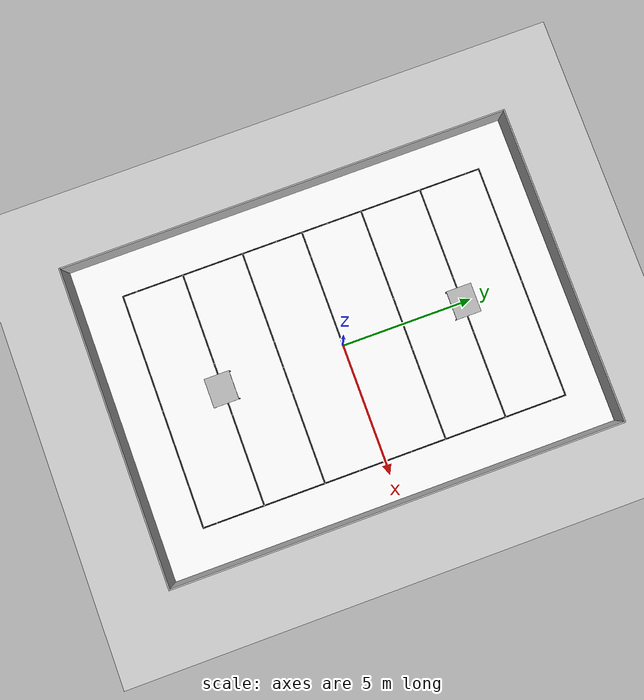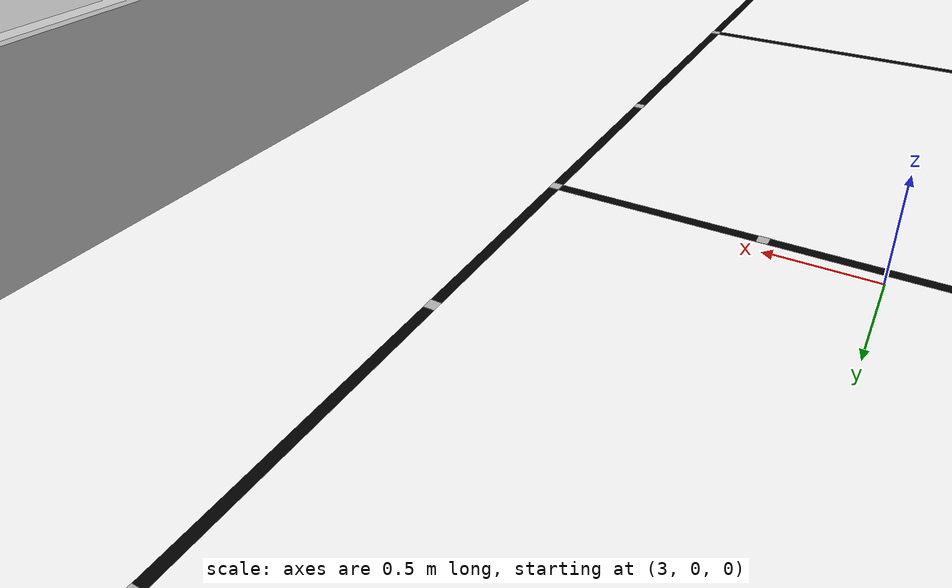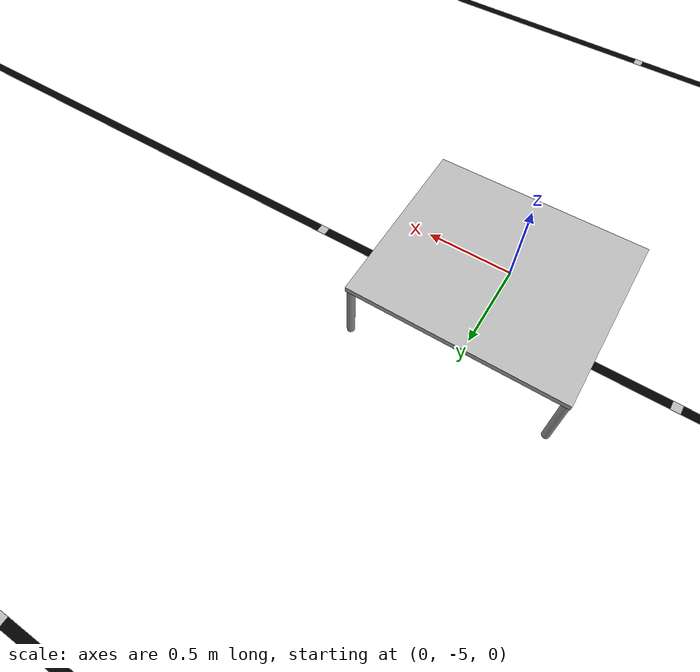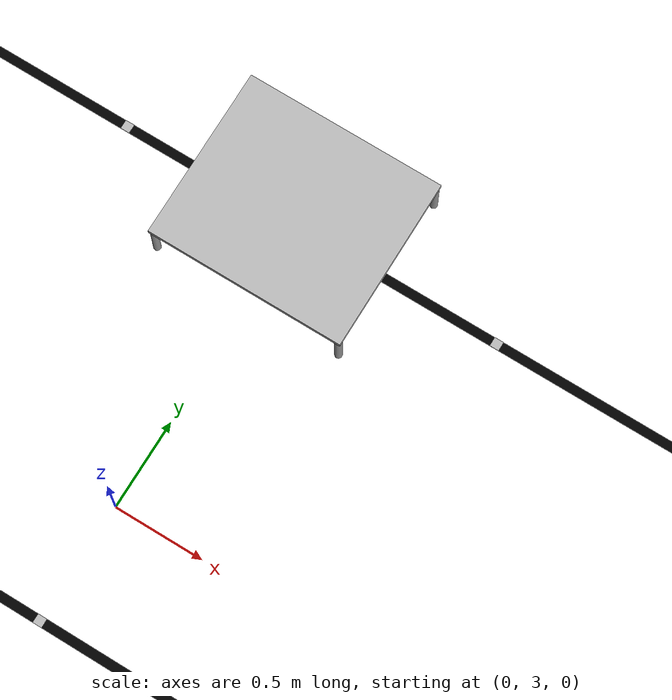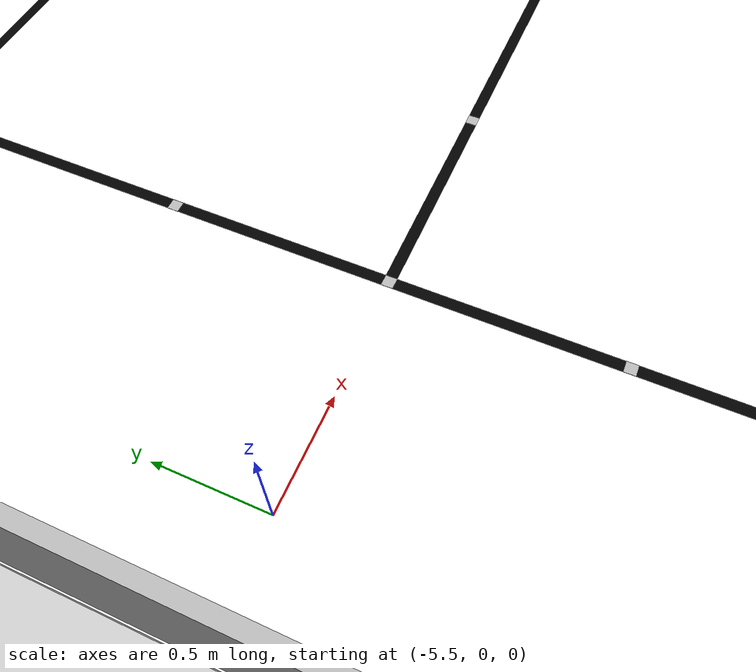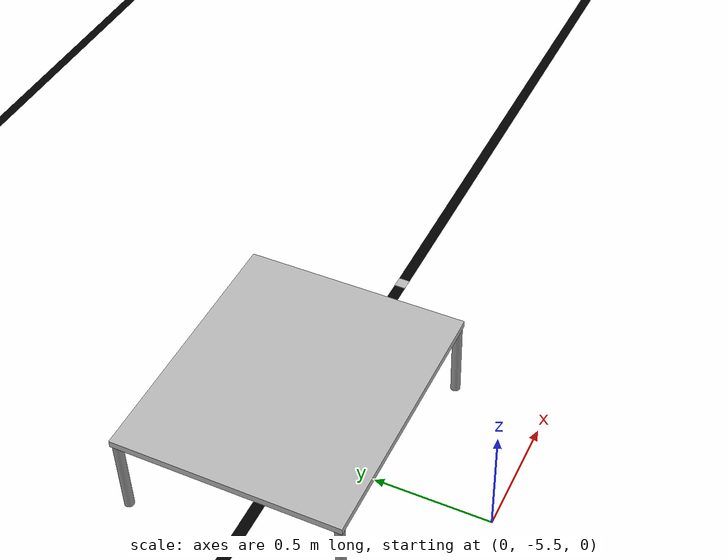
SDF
<sdf version="1.7">
 <world name="default">
  <light name="sun" type="directional">
   <pose>0 0 10 0 -0 0</pose>
   <diffuse>0.8 0.8 0.8 1</diffuse>
   <specular>0.2 0.2 0.2 1</specular>
   <attenuation>
    <range>1000</range>
    <constant>0.9</constant>
    <linear>0.01</linear>
    <quadratic>0.001</quadratic>
   </attenuation>
   <direction>-0.5 0.1 -0.9</direction>
   <spot><inner_angle>0</inner_angle><outer_angle>0</outer_angle><falloff>0</falloff></spot>
  </light>
  <model name="ground_plane">
   <static>1</static>
   <link name="link">
    <collision name="collision">
     <geometry><plane><normal>0 0 1</normal><size>100 100</size></plane></geometry>
    </collision>
    <visual name="visual">
     <geometry><plane><normal>0 0 1</normal><size>100 100</size></plane></geometry>
     <material>
      <script><name>Gazebo/Grey</name><uri>file://media/materials/scripts/gazebo.material</uri></script>
     </material>
    </visual>
   </link>
  </model>
  <model name="wooden_floor">
   <static>1</static>
   <pose>-0.018451 -0.120164 0.01 0 -0 0</pose>
   <link name="floor_link">
    <collision name="floor_collision"><geometry><box><size>12 17 0.1</size></box></geometry></collision>
    <visual name="floor_visual">
     <geometry><box><size>12 17 0.1</size></box></geometry>
     <material><ambient>1 1 1 1</ambient><diffuse>1 1 1 1</diffuse></material>
    </visual>
   </link>
  </model>
  <model name="black_line">
   <static>1</static>
   <pose>0 0 0.06 0 -0 0</pose>
   <link name="line_link">
    <visual name="line_visual">
     <geometry><box><size>9 0.05 0.0001</size></box></geometry>
     <material><ambient>0 0 0 1</ambient><diffuse>0 0 0 1</diffuse></material>
    </visual>
   </link>
  </model>
  <gravity>0 0 -9.8</gravity>
  <scene><ambient>0.4 0.4 0.4 1</ambient><background>0.7 0.7 0.7 1</background><shadows>1</shadows></scene>
  <magnetic_field>6e-06 2.3e-05 -4.2e-05</magnetic_field>
  <atmosphere type="adiabatic"/>
  <physics type="ode">
   <max_step_size>0.001</max_step_size>
   <real_time_factor>1</real_time_factor>
   <real_time_update_rate>1000</real_time_update_rate>
  </physics>
  <spherical_coordinates>
   <surface_model>EARTH_WGS84</surface_model>
   <latitude_deg>0</latitude_deg>
   <longitude_deg>0</longitude_deg>
   <elevation>0</elevation>
   <heading_deg>0</heading_deg>
  </spherical_coordinates>
  <model name="black_line_clone">
   <static>1</static>
   <pose>0 2.33333 0.06 0 -0 0</pose>
   <link name="line_link">
    <visual name="line_visual">
     <geometry><box><size>9 0.05 0.001</size></box></geometry>
     <material><ambient>0 0 0 1</ambient><diffuse>0 0 0 1</diffuse></material>
    </visual>
   </link>
  </model>
  <model name="black_line_clone_0">
   <static>1</static>
   <pose>0 4.666 0.06 0 -0 0</pose>
   <link name="line_link">
    <visual name="line_visual">
     <geometry><box><size>9 0.05 0.001</size></box></geometry>
     <material><ambient>0 0 0 1</ambient><diffuse>0 0 0 1</diffuse></material>
    </visual>
   </link>
  </model>
  <model name="black_line_clone_1">
   <static>1</static>
   <pose>0 7 0.06 0 -0 0</pose>
   <link name="line_link">
    <visual name="line_visual">
     <geometry><box><size>9 0.05 0.001</size></box></geometry>
     <material><ambient>0 0 0 1</ambient><diffuse>0 0 0 1</diffuse></material>
    </visual>
   </link>
  </model>
  <model name="black_line_clone_2">
   <static>1</static>
   <pose>0 -2.3333 0.06 0 -0 0</pose>
   <link name="line_link">
    <visual name="line_visual">
     <geometry><box><size>9 0.05 0.001</size></box></geometry>
     <material><ambient>0 0 0 1</ambient><diffuse>0 0 0 1</diffuse></material>
    </visual>
   </link>
  </model>
  <model name="black_line_clone_3">
   <static>1</static>
   <pose>0 -4.6666 0.06 0 -0 0</pose>
   <link name="line_link">
    <visual name="line_visual">
     <geometry><box><size>9 0.05 0.001</size></box></geometry>
     <material><ambient>0 0 0 1</ambient><diffuse>0 0 0 1</diffuse></material>
    </visual>
   </link>
  </model>
  <model name="black_line_clone_4">
   <static>1</static>
   <pose>0 -7 0.06 0 -0 0</pose>
   <link name="line_link">
    <visual name="line_visual">
     <geometry><box><size>9 0.05 0.001</size></box></geometry>
     <material><ambient>0 0 0 1</ambient><diffuse>0 0 0 1</diffuse></material>
    </visual>
   </link>
  </model>
  <model name="black_line_clone_5">
   <static>1</static>
   <pose>4.475 0 0.06 0 -0 0</pose>
   <link name="line_link">
    <visual name="line_visual">
     <geometry><box><size>0.05 14 0.001</size></box></geometry>
     <material><ambient>0 0 0 1</ambient><diffuse>0 0 0 1</diffuse></material>
    </visual>
   </link>
  </model>
  <model name="black_line_clone_5_clone">
   <static>1</static>
   <pose>-4.475 0 0.06 0 -0 0</pose>
   <link name="line_link">
    <visual name="line_visual">
     <geometry><box><size>0.05 14 0.001</size></box></geometry>
     <material><ambient>0 0 0 1</ambient><diffuse>0 0 0 1</diffuse></material>
    </visual>
   </link>
  </model>
  <model name="cube_test_clone">
   <link name="link_0">
    <inertial>
     <mass>1</mass>
     <inertia>
      <ixx>0.166667</ixx>
      <ixy>0</ixy>
      <ixz>0</ixz>
      <iyy>0.166667</iyy>
      <iyz>0</iyz>
      <izz>0.166667</izz>
     </inertia>
    </inertial>
    <visual name="visual">
     <geometry><box><size>0.05 16.9 1</size></box></geometry>
     <material>
      <lighting>1</lighting>
      <script>
       <uri>model://cube_test/materials/scripts</uri>
       <uri>model://cube_test/materials/textures</uri>
       <name>teknofest_logo</name>
      </script>
      <shader type="pixel"/>
     </material>
    </visual>
    <collision name="collision">
     <geometry><box><size>0.05 16.9 1</size></box></geometry>
     <surface>
      <friction>
       <ode><mu>1</mu><mu2>1</mu2><fdir1>0 0 0</fdir1><slip1>0</slip1><slip2>0</slip2></ode>
       <torsional>
        <coefficient>1</coefficient>
        <patch_radius>0</patch_radius>
        <surface_radius>0</surface_radius>
        <use_patch_radius>1</use_patch_radius>
        <ode><slip>0</slip></ode>
       </torsional>
      </friction>
      <bounce><restitution_coefficient>0</restitution_coefficient><threshold>1e+06</threshold></bounce>
      <contact>
       <collide_without_contact>0</collide_without_contact>
       <collide_without_contact_bitmask>1</collide_without_contact_bitmask>
       <collide_bitmask>1</collide_bitmask>
       <ode>
        <soft_cfm>0</soft_cfm>
        <soft_erp>0.2</soft_erp>
        <kp>1e+13</kp>
        <kd>1</kd>
        <max_vel>0.01</max_vel>
        <min_depth>0</min_depth>
       </ode>
       <bullet>
        <split_impulse>1</split_impulse>
        <split_impulse_penetration_threshold>-0.01</split_impulse_penetration_threshold>
        <soft_cfm>0</soft_cfm>
        <soft_erp>0.2</soft_erp>
        <kp>1e+13</kp>
        <kd>1</kd>
       </bullet>
      </contact>
     </surface>
    </collision>
   </link>
   <static>1</static>
   <pose>5.96296 -0.112884 0.46 0 -0 0</pose>
  </model>
  <model name="cube_test_clone_clone">
   <link name="link_0">
    <inertial>
     <mass>1</mass>
     <inertia>
      <ixx>0.166667</ixx>
      <ixy>0</ixy>
      <ixz>0</ixz>
      <iyy>0.166667</iyy>
      <iyz>0</iyz>
      <izz>0.166667</izz>
     </inertia>
    </inertial>
    <visual name="visual">
     <geometry><box><size>0.05 16.9 1</size></box></geometry>
     <material>
      <lighting>1</lighting>
      <script>
       <uri>model://cube_test/materials/scripts</uri>
       <uri>model://cube_test/materials/textures</uri>
       <name>teknofest_logo</name>
      </script>
      <shader type="pixel"/>
     </material>
    </visual>
    <collision name="collision">
     <geometry><box><size>0.05 16.9 1</size></box></geometry>
     <surface>
      <friction>
       <ode><mu>1</mu><mu2>1</mu2><fdir1>0 0 0</fdir1><slip1>0</slip1><slip2>0</slip2></ode>
       <torsional>
        <coefficient>1</coefficient>
        <patch_radius>0</patch_radius>
        <surface_radius>0</surface_radius>
        <use_patch_radius>1</use_patch_radius>
        <ode><slip>0</slip></ode>
       </torsional>
      </friction>
      <bounce><restitution_coefficient>0</restitution_coefficient><threshold>1e+06</threshold></bounce>
      <contact>
       <collide_without_contact>0</collide_without_contact>
       <collide_without_contact_bitmask>1</collide_without_contact_bitmask>
       <collide_bitmask>1</collide_bitmask>
       <ode>
        <soft_cfm>0</soft_cfm>
        <soft_erp>0.2</soft_erp>
        <kp>1e+13</kp>
        <kd>1</kd>
        <max_vel>0.01</max_vel>
        <min_depth>0</min_depth>
       </ode>
       <bullet>
        <split_impulse>1</split_impulse>
        <split_impulse_penetration_threshold>-0.01</split_impulse_penetration_threshold>
        <soft_cfm>0</soft_cfm>
        <soft_erp>0.2</soft_erp>
        <kp>1e+13</kp>
        <kd>1</kd>
       </bullet>
      </contact>
     </surface>
    </collision>
   </link>
   <static>1</static>
   <pose>-5.98703 -0.112884 0.46 0 -0 0</pose>
  </model>
  <model name="cube_test_clone_clone_0">
   <link name="link_0">
    <inertial>
     <mass>1</mass>
     <inertia>
      <ixx>0.166667</ixx>
      <ixy>0</ixy>
      <ixz>0</ixz>
      <iyy>0.166667</iyy>
      <iyz>0</iyz>
      <izz>0.166667</izz>
     </inertia>
    </inertial>
    <visual name="visual">
     <geometry><box><size>0.05 12 1</size></box></geometry>
     <material>
      <lighting>1</lighting>
      <script>
       <uri>model://cube_test/materials/scripts</uri>
       <uri>model://cube_test/materials/textures</uri>
       <name>teknofest_logo</name>
      </script>
      <shader type="pixel"/>
     </material>
    </visual>
    <collision name="collision">
     <geometry><box><size>0.05 12 1</size></box></geometry>
     <surface>
      <friction>
       <ode><mu>1</mu><mu2>1</mu2><fdir1>0 0 0</fdir1><slip1>0</slip1><slip2>0</slip2></ode>
       <torsional>
        <coefficient>1</coefficient>
        <patch_radius>0</patch_radius>
        <surface_radius>0</surface_radius>
        <use_patch_radius>1</use_patch_radius>
        <ode><slip>0</slip></ode>
       </torsional>
      </friction>
      <bounce><restitution_coefficient>0</restitution_coefficient><threshold>1e+06</threshold></bounce>
      <contact>
       <collide_without_contact>0</collide_without_contact>
       <collide_without_contact_bitmask>1</collide_without_contact_bitmask>
       <collide_bitmask>1</collide_bitmask>
       <ode>
        <soft_cfm>0</soft_cfm>
        <soft_erp>0.2</soft_erp>
        <kp>1e+13</kp>
        <kd>1</kd>
        <max_vel>0.01</max_vel>
        <min_depth>0</min_depth>
       </ode>
       <bullet>
        <split_impulse>1</split_impulse>
        <split_impulse_penetration_threshold>-0.01</split_impulse_penetration_threshold>
        <soft_cfm>0</soft_cfm>
        <soft_erp>0.2</soft_erp>
        <kp>1e+13</kp>
        <kd>1</kd>
       </bullet>
      </contact>
     </surface>
    </collision>
   </link>
   <static>1</static>
   <pose>-0.012035 -8.58616 0.46 0 -0 1.571</pose>
  </model>
  <model name="cube_test_clone_clone_0_clone">
   <link name="link_0">
    <inertial>
     <mass>1</mass>
     <inertia>
      <ixx>0.166667</ixx>
      <ixy>0</ixy>
      <ixz>0</ixz>
      <iyy>0.166667</iyy>
      <iyz>0</iyz>
      <izz>0.166667</izz>
     </inertia>
    </inertial>
    <visual name="visual">
     <geometry><box><size>0.05 12 1</size></box></geometry>
     <material>
      <lighting>1</lighting>
      <script>
       <uri>model://cube_test/materials/scripts</uri>
       <uri>model://cube_test/materials/textures</uri>
       <name>teknofest_logo</name>
      </script>
      <shader type="pixel"/>
     </material>
    </visual>
    <collision name="collision">
     <geometry><box><size>0.05 12 1</size></box></geometry>
     <surface>
      <friction>
       <ode><mu>1</mu><mu2>1</mu2><fdir1>0 0 0</fdir1><slip1>0</slip1><slip2>0</slip2></ode>
       <torsional>
        <coefficient>1</coefficient>
        <patch_radius>0</patch_radius>
        <surface_radius>0</surface_radius>
        <use_patch_radius>1</use_patch_radius>
        <ode><slip>0</slip></ode>
       </torsional>
      </friction>
      <bounce><restitution_coefficient>0</restitution_coefficient><threshold>1e+06</threshold></bounce>
      <contact>
       <collide_without_contact>0</collide_without_contact>
       <collide_without_contact_bitmask>1</collide_without_contact_bitmask>
       <collide_bitmask>1</collide_bitmask>
       <ode>
        <soft_cfm>0</soft_cfm>
        <soft_erp>0.2</soft_erp>
        <kp>1e+13</kp>
        <kd>1</kd>
        <max_vel>0.01</max_vel>
        <min_depth>0</min_depth>
       </ode>
       <bullet>
        <split_impulse>1</split_impulse>
        <split_impulse_penetration_threshold>-0.01</split_impulse_penetration_threshold>
        <soft_cfm>0</soft_cfm>
        <soft_erp>0.2</soft_erp>
        <kp>1e+13</kp>
        <kd>1</kd>
       </bullet>
      </contact>
     </surface>
    </collision>
   </link>
   <static>1</static>
   <pose>-0.012035 8.3604 0.46 0 -0 1.571</pose>
  </model>
  <light name="user_point_light_0" type="point">
   <pose>-0.089094 -0.040019 1 0 -0 0</pose>
   <diffuse>0.5 0.5 0.5 1</diffuse>
   <specular>0.1 0.1 0.1 1</specular>
   <attenuation>
    <range>20</range>
    <constant>0.5</constant>
    <linear>0.01</linear>
    <quadratic>0.001</quadratic>
   </attenuation>
   <cast_shadows>0</cast_shadows>
   <direction>0 0 -1</direction>
   <spot><inner_angle>0</inner_angle><outer_angle>0</outer_angle><falloff>0</falloff></spot>
  </light>
  <light name="user_point_light_1" type="point">
   <pose>-0.011297 -3.43767 1 0 -0 0</pose>
   <diffuse>0.5 0.5 0.5 1</diffuse>
   <specular>0.1 0.1 0.1 1</specular>
   <attenuation>
    <range>20</range>
    <constant>0.5</constant>
    <linear>0.01</linear>
    <quadratic>0.001</quadratic>
   </attenuation>
   <cast_shadows>0</cast_shadows>
   <direction>0 0 -1</direction>
   <spot><inner_angle>0</inner_angle><outer_angle>0</outer_angle><falloff>0</falloff></spot>
  </light>
  <light name="user_point_light_2" type="point">
   <pose>0.155011 3.54169 1 0 -0 0</pose>
   <diffuse>0.5 0.5 0.5 1</diffuse>
   <specular>0.1 0.1 0.1 1</specular>
   <attenuation>
    <range>20</range>
    <constant>0.5</constant>
    <linear>0.01</linear>
    <quadratic>0.001</quadratic>
   </attenuation>
   <cast_shadows>0</cast_shadows>
   <direction>0 0 -1</direction>
   <spot><inner_angle>0</inner_angle><outer_angle>0</outer_angle><falloff>0</falloff></spot>
  </light>
  <model name="qr_code">
   <pose>3.5 0 0.061 0 -0 0</pose>
   <link name="link_0">
    <visual name="visual">
     <geometry><box><size>0.05 0.05 0.001</size></box></geometry>
     <material>
      <lighting>1</lighting>
      <script>
       <uri>model://qr_code/materials/scripts</uri>
       <uri>model://qr_code/materials/textures</uri>
       <name>station_1_up</name>
      </script>
      <shader type="pixel"/>
     </material>
    </visual>
   </link>
   <static>1</static>
  </model>
  <model name="qr_code_station_1_right">
   <pose>4.475 1 0.061 0 -0 0</pose>
   <link name="link_0">
    <visual name="visual">
     <geometry><box><size>0.05 0.05 0.001</size></box></geometry>
     <material>
      <lighting>1</lighting>
      <script>
       <uri>model://qr_code/materials/scripts</uri>
       <uri>model://qr_code/materials/textures</uri>
       <name>station_1_right</name>
      </script>
      <shader type="pixel"/>
     </material>
    </visual>
   </link>
   <static>1</static>
  </model>
  <model name="qr_code_station_1_left">
   <pose>4.475 -1 0.061 0 -0 0</pose>
   <link name="link_0">
    <visual name="visual">
     <geometry><box><size>0.05 0.05 0.001</size></box></geometry>
     <material>
      <lighting>1</lighting>
      <script>
       <uri>model://qr_code/materials/scripts</uri>
       <uri>model://qr_code/materials/textures</uri>
       <name>station_1_left</name>
      </script>
      <shader type="pixel"/>
     </material>
    </visual>
   </link>
   <static>1</static>
  </model>
  <model name="qr_code_station_1_center">
   <pose>4.475 0 0.061 0 -0 0</pose>
   <link name="link_0">
    <visual name="visual">
     <geometry><box><size>0.05 0.05 0.001</size></box></geometry>
     <material>
      <lighting>1</lighting>
      <script>
       <uri>model://qr_code/materials/scripts</uri>
       <uri>model://qr_code/materials/textures</uri>
       <name>station_1_center</name>
      </script>
      <shader type="pixel"/>
     </material>
    </visual>
   </link>
   <static>1</static>
  </model>
  <model name="qr_code_center">
   <pose>0 0 0.061 0 -0 0</pose>
   <link name="link_0">
    <visual name="visual">
     <geometry><box><size>0.05 0.05 0.001</size></box></geometry>
     <material>
      <lighting>1</lighting>
      <script>
       <uri>model://qr_code/materials/scripts</uri>
       <uri>model://qr_code/materials/textures</uri>
       <name>center</name>
      </script>
      <shader type="pixel"/>
     </material>
    </visual>
   </link>
   <static>1</static>
  </model>
  <model name="qr_code_station_2_center">
   <pose>-4.475 0 0.061 0 -0 0</pose>
   <link name="link_0">
    <visual name="visual">
     <geometry><box><size>0.05 0.05 0.001</size></box></geometry>
     <material>
      <lighting>1</lighting>
      <script>
       <uri>model://qr_code/materials/scripts</uri>
       <uri>model://qr_code/materials/textures</uri>
       <name>station_2_center</name>
      </script>
      <shader type="pixel"/>
     </material>
    </visual>
   </link>
   <static>1</static>
  </model>
  <model name="qr_code_station_2_left">
   <pose>-4.475 -1 0.061 0 -0 0</pose>
   <link name="link_0">
    <visual name="visual">
     <geometry><box><size>0.05 0.05 0.001</size></box></geometry>
     <material>
      <lighting>1</lighting>
      <script>
       <uri>model://qr_code/materials/scripts</uri>
       <uri>model://qr_code/materials/textures</uri>
       <name>station_2_left</name>
      </script>
      <shader type="pixel"/>
     </material>
    </visual>
   </link>
   <static>1</static>
  </model>
  <model name="qr_code_station_2_right">
   <pose>-4.476 1 0.061 0 -0 0</pose>
   <link name="link_0">
    <visual name="visual">
     <geometry><box><size>0.05 0.05 0.001</size></box></geometry>
     <material>
      <lighting>1</lighting>
      <script>
       <uri>model://qr_code/materials/scripts</uri>
       <uri>model://qr_code/materials/textures</uri>
       <name>station_2_right</name>
      </script>
      <shader type="pixel"/>
     </material>
    </visual>
   </link>
   <static>1</static>
  </model>
  <model name="qr_code_station_2_up">
   <pose>-3.5 0 0.061 0 -0 0</pose>
   <link name="link_0">
    <visual name="visual">
     <geometry><box><size>0.05 0.05 0.001</size></box></geometry>
     <material>
      <lighting>1</lighting>
      <script>
       <uri>model://qr_code/materials/scripts</uri>
       <uri>model://qr_code/materials/textures</uri>
       <name>station_2_up</name>
      </script>
      <shader type="pixel"/>
     </material>
    </visual>
   </link>
   <static>1</static>
  </model>
  <model name="qr_code_zone_a_center">
   <pose>0 4.66666 0.061 0 -0 0</pose>
   <link name="link_0">
    <visual name="visual">
     <geometry><box><size>0.05 0.05 0.001</size></box></geometry>
     <material>
      <lighting>1</lighting>
      <script>
       <uri>model://qr_code/materials/scripts</uri>
       <uri>model://qr_code/materials/textures</uri>
       <name>zone_a_center</name>
      </script>
      <shader type="pixel"/>
     </material>
    </visual>
   </link>
   <static>1</static>
  </model>
  <model name="qr_code_zone_a_down">
   <pose>1.16746 4.66688 0.061 0 -0 0</pose>
   <link name="link_0">
    <visual name="visual">
     <geometry><box><size>0.05 0.05 0.001</size></box></geometry>
     <material>
      <lighting>1</lighting>
      <script>
       <uri>model://qr_code/materials/scripts</uri>
       <uri>model://qr_code/materials/textures</uri>
       <name>zone_a_down</name>
      </script>
      <shader type="pixel"/>
     </material>
    </visual>
   </link>
   <static>1</static>
  </model>
  <model name="qr_code_zone_a_up">
   <pose>-1 4.66667 0.061 0 -0 0</pose>
   <link name="link_0">
    <visual name="visual">
     <geometry><box><size>0.05 0.05 0.001</size></box></geometry>
     <material>
      <lighting>1</lighting>
      <script>
       <uri>model://qr_code/materials/scripts</uri>
       <uri>model://qr_code/materials/textures</uri>
       <name>zone_a_up</name>
      </script>
      <shader type="pixel"/>
     </material>
    </visual>
   </link>
   <static>1</static>
  </model>
  <model name="qr_code_zone_b_center">
   <pose>0 2.33333 0.0615 0 -0 0</pose>
   <link name="link_0">
    <visual name="visual">
     <geometry><box><size>0.05 0.05 0.001</size></box></geometry>
     <material>
      <lighting>1</lighting>
      <script>
       <uri>model://qr_code/materials/scripts</uri>
       <uri>model://qr_code/materials/textures</uri>
       <name>zone_b_center</name>
      </script>
      <shader type="pixel"/>
     </material>
    </visual>
   </link>
   <static>1</static>
  </model>
  <model name="qr_code_zone_b_down">
   <pose>1 2.33333 0.0615 0 -0 0</pose>
   <link name="link_0">
    <visual name="visual">
     <geometry><box><size>0.05 0.05 0.001</size></box></geometry>
     <material>
      <lighting>1</lighting>
      <script>
       <uri>model://qr_code/materials/scripts</uri>
       <uri>model://qr_code/materials/textures</uri>
       <name>zone_b_down</name>
      </script>
      <shader type="pixel"/>
     </material>
    </visual>
   </link>
   <static>1</static>
  </model>
  <model name="qr_code_zone_b_up">
   <pose>-1 2.33333 0.0615 0 -0 0</pose>
   <link name="link_0">
    <visual name="visual">
     <geometry><box><size>0.05 0.05 0.001</size></box></geometry>
     <material>
      <lighting>1</lighting>
      <script>
       <uri>model://qr_code/materials/scripts</uri>
       <uri>model://qr_code/materials/textures</uri>
       <name>zone_b_up</name>
      </script>
      <shader type="pixel"/>
     </material>
    </visual>
   </link>
   <static>1</static>
  </model>
  <model name="qr_code_zone_c_center">
   <pose>0 -2.33333 0.061 0 -0 0</pose>
   <link name="link_0">
    <visual name="visual">
     <geometry><box><size>0.05 0.05 0.001</size></box></geometry>
     <material>
      <lighting>1</lighting>
      <script>
       <uri>model://qr_code/materials/scripts</uri>
       <uri>model://qr_code/materials/textures</uri>
       <name>zone_c_center</name>
      </script>
      <shader type="pixel"/>
     </material>
    </visual>
   </link>
   <static>1</static>
  </model>
  <model name="qr_code_zone_c_down">
   <pose>1 -2.33333 0.061 0 -0 0</pose>
   <link name="link_0">
    <visual name="visual">
     <geometry><box><size>0.05 0.05 0.001</size></box></geometry>
     <material>
      <lighting>1</lighting>
      <script>
       <uri>model://qr_code/materials/scripts</uri>
       <uri>model://qr_code/materials/textures</uri>
       <name>zone_c_down</name>
      </script>
      <shader type="pixel"/>
     </material>
    </visual>
   </link>
   <static>1</static>
  </model>
  <model name="qr_code_zone_c_up">
   <pose>-1 -2.33333 0.061 0 -0 0</pose>
   <link name="link_0">
    <visual name="visual">
     <geometry><box><size>0.05 0.05 0.001</size></box></geometry>
     <material>
      <lighting>1</lighting>
      <script>
       <uri>model://qr_code/materials/scripts</uri>
       <uri>model://qr_code/materials/textures</uri>
       <name>zone_c_up</name>
      </script>
      <shader type="pixel"/>
     </material>
    </visual>
   </link>
   <static>1</static>
  </model>
  <model name="qr_code_zone_d_center">
   <pose>0.077847 -4.6681 0.061 0 -0 0</pose>
   <link name="link_0">
    <visual name="visual">
     <geometry><box><size>0.05 0.05 0.001</size></box></geometry>
     <material>
      <lighting>1</lighting>
      <script>
       <uri>model://qr_code/materials/scripts</uri>
       <uri>model://qr_code/materials/textures</uri>
       <name>zone_d_center</name>
      </script>
      <shader type="pixel"/>
     </material>
    </visual>
   </link>
   <static>1</static>
  </model>
  <model name="qr_code_zone_d_down">
   <pose>1 -4.66667 0.061 0 -0 0</pose>
   <link name="link_0">
    <visual name="visual">
     <geometry><box><size>0.05 0.05 0.001</size></box></geometry>
     <material>
      <lighting>1</lighting>
      <script>
       <uri>model://qr_code/materials/scripts</uri>
       <uri>model://qr_code/materials/textures</uri>
       <name>zone_d_down</name>
      </script>
      <shader type="pixel"/>
     </material>
    </visual>
   </link>
   <static>1</static>
  </model>
  <model name="qr_code_zone_d_up">
   <pose>-1 -4.66666 0.061 0 -0 0</pose>
   <link name="link_0">
    <visual name="visual">
     <geometry><box><size>0.05 0.05 0.001</size></box></geometry>
     <material>
      <lighting>1</lighting>
      <script>
       <uri>model://qr_code/materials/scripts</uri>
       <uri>model://qr_code/materials/textures</uri>
       <name>zone_d_up</name>
      </script>
      <shader type="pixel"/>
     </material>
    </visual>
   </link>
   <static>1</static>
  </model>
  <model name="qr_code_intersection_zone_b_station_1">
   <pose>4.475 2.333 0.061 0 -0 0</pose>
   <link name="link_0">
    <visual name="visual">
     <geometry><box><size>0.05 0.05 0.001</size></box></geometry>
     <material>
      <lighting>1</lighting>
      <script>
       <uri>model://qr_code/materials/scripts</uri>
       <uri>model://qr_code/materials/textures</uri>
       <name>intersection_zone_b_station_1</name>
      </script>
      <shader type="pixel"/>
     </material>
    </visual>
   </link>
   <static>1</static>
  </model>
  <model name="qr_code_intersection_zone_a_station_1">
   <pose>4.475 4.666 0.061 0 -0 0</pose>
   <link name="link_0">
    <visual name="visual">
     <geometry><box><size>0.05 0.05 0.001</size></box></geometry>
     <material>
      <lighting>1</lighting>
      <script>
       <uri>model://qr_code/materials/scripts</uri>
       <uri>model://qr_code/materials/textures</uri>
       <name>intersection_zone_a_station_1</name>
      </script>
      <shader type="pixel"/>
     </material>
    </visual>
   </link>
   <static>1</static>
  </model>
  <model name="qr_code_intersection_zone_x_station_1">
   <pose>4.475 6.475 0.061 0 -0 0</pose>
   <link name="link_0">
    <visual name="visual">
     <geometry><box><size>0.05 0.05 0.001</size></box></geometry>
     <material>
      <lighting>1</lighting>
      <script>
       <uri>model://qr_code/materials/scripts</uri>
       <uri>model://qr_code/materials/textures</uri>
       <name>intersection_zone_x_station_1</name>
      </script>
      <shader type="pixel"/>
     </material>
    </visual>
   </link>
   <static>1</static>
  </model>
  <model name="qr_code_zone_x_center">
   <pose>0 6.9999 0.061 0 -0 0</pose>
   <link name="link_0">
    <visual name="visual">
     <geometry><box><size>0.05 0.05 0.001</size></box></geometry>
     <material>
      <lighting>1</lighting>
      <script>
       <uri>model://qr_code/materials/scripts</uri>
       <uri>model://qr_code/materials/textures</uri>
       <name>zone_x_center</name>
      </script>
      <shader type="pixel"/>
     </material>
    </visual>
   </link>
   <static>1</static>
  </model>
  <model name="qr_code_intersection_zone_x_station_2">
   <pose>-4.475 6.475 0.061 0 -0 0</pose>
   <link name="link_0">
    <visual name="visual">
     <geometry><box><size>0.05 0.05 0.001</size></box></geometry>
     <material>
      <lighting>1</lighting>
      <script>
       <uri>model://qr_code/materials/scripts</uri>
       <uri>model://qr_code/materials/textures</uri>
       <name>intersection_zone_x_station_2</name>
      </script>
      <shader type="pixel"/>
     </material>
    </visual>
   </link>
   <static>1</static>
  </model>
  <model name="qr_code_intersection_zone_a_station_2">
   <pose>-4.475 4.666 0.061 0 -0 0</pose>
   <link name="link_0">
    <visual name="visual">
     <geometry><box><size>0.05 0.05 0.001</size></box></geometry>
     <material>
      <lighting>1</lighting>
      <script>
       <uri>model://qr_code/materials/scripts</uri>
       <uri>model://qr_code/materials/textures</uri>
       <name>intersection_zone_a_station_2</name>
      </script>
      <shader type="pixel"/>
     </material>
    </visual>
   </link>
   <static>1</static>
  </model>
  <model name="qr_code_intersection_zone_b_station_2">
   <pose>-4.475 2.333 0.061 0 -0 0</pose>
   <link name="link_0">
    <visual name="visual">
     <geometry><box><size>0.05 0.05 0.001</size></box></geometry>
     <material>
      <lighting>1</lighting>
      <script>
       <uri>model://qr_code/materials/scripts</uri>
       <uri>model://qr_code/materials/textures</uri>
       <name>intersection_zone_b_station_2</name>
      </script>
      <shader type="pixel"/>
     </material>
    </visual>
   </link>
   <static>1</static>
  </model>
  <model name="qr_code_intersection_zone_c_station_2">
   <pose>-4.475 -2.333 0.061 0 -0 0</pose>
   <link name="link_0">
    <visual name="visual">
     <geometry><box><size>0.05 0.05 0.001</size></box></geometry>
     <material>
      <lighting>1</lighting>
      <script>
       <uri>model://qr_code/materials/scripts</uri>
       <uri>model://qr_code/materials/textures</uri>
       <name>intersection_zone_c_station_2</name>
      </script>
      <shader type="pixel"/>
     </material>
    </visual>
   </link>
   <static>1</static>
  </model>
  <model name="qr_code_intersection_zone_d_station_2">
   <pose>-4.475 -4.666 0.061 0 -0 0</pose>
   <link name="link_0">
    <visual name="visual">
     <geometry><box><size>0.05 0.05 0.001</size></box></geometry>
     <material>
      <lighting>1</lighting>
      <script>
       <uri>model://qr_code/materials/scripts</uri>
       <uri>model://qr_code/materials/textures</uri>
       <name>intersection_zone_d_station_2</name>
      </script>
      <shader type="pixel"/>
     </material>
    </visual>
   </link>
   <static>1</static>
  </model>
  <model name="qr_code_intersection_zone_y_station_2">
   <pose>-4.47547 -6.475 0.061 0 -0 0</pose>
   <link name="link_0">
    <visual name="visual">
     <geometry><box><size>0.05 0.05 0.001</size></box></geometry>
     <material>
      <lighting>1</lighting>
      <script>
       <uri>model://qr_code/materials/scripts</uri>
       <uri>model://qr_code/materials/textures</uri>
       <name>intersection_zone_y_station_2</name>
      </script>
      <shader type="pixel"/>
     </material>
    </visual>
   </link>
   <static>1</static>
  </model>
  <model name="qr_code_zone_y_center">
   <pose>0 -6.999 0.061 0 -0 0</pose>
   <link name="link_0">
    <visual name="visual">
     <geometry><box><size>0.05 0.05 0.001</size></box></geometry>
     <material>
      <lighting>1</lighting>
      <script>
       <uri>model://qr_code/materials/scripts</uri>
       <uri>model://qr_code/materials/textures</uri>
       <name>zone_y_center</name>
      </script>
      <shader type="pixel"/>
     </material>
    </visual>
   </link>
   <static>1</static>
  </model>
  <model name="qr_code_intersection_zone_c_station_1">
   <pose>4.47438 -2.33404 0.061 0 -0 0</pose>
   <link name="link_0">
    <visual name="visual">
     <geometry><box><size>0.05 0.05 0.001</size></box></geometry>
     <material>
      <lighting>1</lighting>
      <script>
       <uri>model://qr_code/materials/scripts</uri>
       <uri>model://qr_code/materials/textures</uri>
       <name>intersection_zone_c_station_1</name>
      </script>
      <shader type="pixel"/>
     </material>
    </visual>
   </link>
   <static>1</static>
  </model>
  <model name="qr_code_intersection_zone_d_station_1">
   <pose>4.47625 -4.66548 0.061 0 -0 0</pose>
   <link name="link_0">
    <visual name="visual">
     <geometry><box><size>0.05 0.05 0.001</size></box></geometry>
     <material>
      <lighting>1</lighting>
      <script>
       <uri>model://qr_code/materials/scripts</uri>
       <uri>model://qr_code/materials/textures</uri>
       <name>intersection_zone_d_station_1</name>
      </script>
      <shader type="pixel"/>
     </material>
    </visual>
   </link>
   <static>1</static>
  </model>
  <model name="qr_code_intersection_zone_y_station_1">
   <pose>4.475 -6.475 0.061 0 -0 0</pose>
   <link name="link_0">
    <visual name="visual">
     <geometry><box><size>0.05 0.05 0.001</size></box></geometry>
     <material>
      <lighting>1</lighting>
      <script>
       <uri>model://qr_code/materials/scripts</uri>
       <uri>model://qr_code/materials/textures</uri>
       <name>intersection_zone_y_station_1</name>
      </script>
      <shader type="pixel"/>
     </material>
    </visual>
   </link>
   <static>1</static>
  </model>
  <model name="platform">
   <link name="table_surface">
    <inertial>
     <mass>13.98</mass>
     <inertia><ixx>0.1</ixx><ixy>0</ixy><ixz>0</ixz><iyy>0.1</iyy><iyz>0</iyz><izz>0.1</izz></inertia>
    </inertial>
    <collision name="surface_collision">
     <pose>0 0 0.367 0 -0 0</pose>
     <geometry><box><size>1.1 0.95 0.03</size></box></geometry>
     <surface><friction><ode><mu>1</mu><mu2>1</mu2></ode></friction></surface>
    </collision>
    <visual name="surface_visual">
     <pose>0 0 0.367 0 -0 0</pose>
     <geometry><box><size>1.1 0.95 0.03</size></box></geometry>
     <material>
      <script>
       <uri>model://platform/materials/scripts</uri>
       <uri>model://platform/materials/textures</uri>
       <name>stainless_steel_texture</name>
      </script>
     </material>
    </visual>
   </link>
   <link name="front_left_leg">
    <inertial>
     <mass>2.796</mass>
     <inertia><ixx>0.01</ixx><ixy>0</ixy><ixz>0</ixz><iyy>0.01</iyy><iyz>0</iyz><izz>0.01</izz></inertia>
    </inertial>
    <collision name="collision">
     <pose>0.53 0.455 0.1835 0 -0 0</pose>
     <geometry><cylinder><radius>0.02</radius><length>0.367</length></cylinder></geometry>
     <surface>
      <friction><ode><mu>1</mu><mu2>1</mu2></ode></friction>
      <contact><ode><kp>100000</kp><kd>1</kd></ode></contact>
     </surface>
    </collision>
    <visual name="visual">
     <pose>0.53 0.455 0.1835 0 -0 0</pose>
     <geometry><cylinder><radius>0.02</radius><length>0.367</length></cylinder></geometry>
     <material>
      <script><uri>file://media/materials/scripts/gazebo.material</uri><name>Gazebo/Grey</name></script>
     </material>
    </visual>
   </link>
   <link name="front_right_leg">
    <inertial>
     <mass>2.796</mass>
     <inertia><ixx>0.01</ixx><ixy>0</ixy><ixz>0</ixz><iyy>0.01</iyy><iyz>0</iyz><izz>0.01</izz></inertia>
    </inertial>
    <collision name="collision">
     <pose>0.53 -0.455 0.1835 0 -0 0</pose>
     <geometry><cylinder><radius>0.02</radius><length>0.367</length></cylinder></geometry>
     <surface>
      <friction><ode><mu>1</mu><mu2>1</mu2></ode></friction>
      <contact><ode><kp>100000</kp><kd>1</kd></ode></contact>
     </surface>
    </collision>
    <visual name="visual">
     <pose>0.53 -0.455 0.1835 0 -0 0</pose>
     <geometry><cylinder><radius>0.02</radius><length>0.367</length></cylinder></geometry>
     <material>
      <script><uri>file://media/materials/scripts/gazebo.material</uri><name>Gazebo/Grey</name></script>
     </material>
    </visual>
   </link>
   <link name="back_left_leg">
    <inertial>
     <mass>2.796</mass>
     <inertia><ixx>0.01</ixx><ixy>0</ixy><ixz>0</ixz><iyy>0.01</iyy><iyz>0</iyz><izz>0.01</izz></inertia>
    </inertial>
    <collision name="collision">
     <pose>-0.53 0.455 0.1835 0 -0 0</pose>
     <geometry><cylinder><radius>0.02</radius><length>0.367</length></cylinder></geometry>
     <surface>
      <friction><ode><mu>1</mu><mu2>1</mu2></ode></friction>
      <contact><ode><kp>100000</kp><kd>1</kd></ode></contact>
     </surface>
    </collision>
    <visual name="visual">
     <pose>-0.53 0.455 0.1835 0 -0 0</pose>
     <geometry><cylinder><radius>0.02</radius><length>0.367</length></cylinder></geometry>
     <material>
      <script><uri>file://media/materials/scripts/gazebo.material</uri><name>Gazebo/Grey</name></script>
     </material>
    </visual>
   </link>
   <link name="back_right_leg">
    <inertial>
     <mass>2.796</mass>
     <inertia><ixx>0.01</ixx><ixy>0</ixy><ixz>0</ixz><iyy>0.01</iyy><iyz>0</iyz><izz>0.01</izz></inertia>
    </inertial>
    <collision name="collision">
     <pose>-0.53 -0.455 0.1835 0 -0 0</pose>
     <geometry><cylinder><radius>0.02</radius><length>0.367</length></cylinder></geometry>
     <surface>
      <friction><ode><mu>1</mu><mu2>1</mu2></ode></friction>
      <contact><ode><kp>100000</kp><kd>1</kd></ode></contact>
     </surface>
    </collision>
    <visual name="visual">
     <pose>-0.53 -0.455 0.1835 0 -0 0</pose>
     <geometry><cylinder><radius>0.02</radius><length>0.367</length></cylinder></geometry>
     <material>
      <script><uri>file://media/materials/scripts/gazebo.material</uri><name>Gazebo/Grey</name></script>
     </material>
    </visual>
   </link>
   <joint name="front_left_joint" type="fixed">
    <parent>table_surface</parent>
    <child>front_left_leg</child>
    <pose>0.53 0.455 0.1835 0 -0 0</pose>
   </joint>
   <joint name="front_right_joint" type="fixed">
    <parent>table_surface</parent>
    <child>front_right_leg</child>
    <pose>0.53 -0.455 0.1835 0 -0 0</pose>
   </joint>
   <joint name="back_left_joint" type="fixed">
    <parent>table_surface</parent>
    <child>back_left_leg</child>
    <pose>-0.53 0.455 0.1835 0 -0 0</pose>
   </joint>
   <joint name="back_right_joint" type="fixed">
    <parent>table_surface</parent>
    <child>back_right_leg</child>
    <pose>-0.53 -0.455 0.1835 0 -0 0</pose>
   </joint>
   <pose>-7.6e-05 4.66673 -0.032178 4.4e-05 -3.5e-05 -0.000125</pose>
  </model>
  <model name="platform_clone">
   <link name="table_surface">
    <inertial>
     <mass>13.98</mass>
     <inertia><ixx>0.1</ixx><ixy>0</ixy><ixz>0</ixz><iyy>0.1</iyy><iyz>0</iyz><izz>0.1</izz></inertia>
    </inertial>
    <collision name="surface_collision">
     <pose>0 0 0.367 0 -0 0</pose>
     <geometry><box><size>1.1 0.95 0.03</size></box></geometry>
     <surface><friction><ode><mu>1</mu><mu2>1</mu2></ode></friction></surface>
    </collision>
    <visual name="surface_visual">
     <pose>0 0 0.367 0 -0 0</pose>
     <geometry><box><size>1.1 0.95 0.03</size></box></geometry>
     <material>
      <script>
       <uri>model://platform/materials/scripts</uri>
       <uri>model://platform/materials/textures</uri>
       <name>stainless_steel_texture</name>
      </script>
     </material>
    </visual>
   </link>
   <link name="front_left_leg">
    <inertial>
     <mass>2.796</mass>
     <inertia><ixx>0.01</ixx><ixy>0</ixy><ixz>0</ixz><iyy>0.01</iyy><iyz>0</iyz><izz>0.01</izz></inertia>
    </inertial>
    <collision name="collision">
     <pose>0.53 0.455 0.1835 0 -0 0</pose>
     <geometry><cylinder><radius>0.02</radius><length>0.367</length></cylinder></geometry>
     <surface>
      <friction><ode><mu>1</mu><mu2>1</mu2></ode></friction>
      <contact><ode><kp>100000</kp><kd>1</kd></ode></contact>
     </surface>
    </collision>
    <visual name="visual">
     <pose>0.53 0.455 0.1835 0 -0 0</pose>
     <geometry><cylinder><radius>0.02</radius><length>0.367</length></cylinder></geometry>
     <material>
      <script><uri>file://media/materials/scripts/gazebo.material</uri><name>Gazebo/Grey</name></script>
     </material>
    </visual>
   </link>
   <link name="front_right_leg">
    <inertial>
     <mass>2.796</mass>
     <inertia><ixx>0.01</ixx><ixy>0</ixy><ixz>0</ixz><iyy>0.01</iyy><iyz>0</iyz><izz>0.01</izz></inertia>
    </inertial>
    <collision name="collision">
     <pose>0.53 -0.455 0.1835 0 -0 0</pose>
     <geometry><cylinder><radius>0.02</radius><length>0.367</length></cylinder></geometry>
     <surface>
      <friction><ode><mu>1</mu><mu2>1</mu2></ode></friction>
      <contact><ode><kp>100000</kp><kd>1</kd></ode></contact>
     </surface>
    </collision>
    <visual name="visual">
     <pose>0.53 -0.455 0.1835 0 -0 0</pose>
     <geometry><cylinder><radius>0.02</radius><length>0.367</length></cylinder></geometry>
     <material>
      <script><uri>file://media/materials/scripts/gazebo.material</uri><name>Gazebo/Grey</name></script>
     </material>
    </visual>
   </link>
   <link name="back_left_leg">
    <inertial>
     <mass>2.796</mass>
     <inertia><ixx>0.01</ixx><ixy>0</ixy><ixz>0</ixz><iyy>0.01</iyy><iyz>0</iyz><izz>0.01</izz></inertia>
    </inertial>
    <collision name="collision">
     <pose>-0.53 0.455 0.1835 0 -0 0</pose>
     <geometry><cylinder><radius>0.02</radius><length>0.367</length></cylinder></geometry>
     <surface>
      <friction><ode><mu>1</mu><mu2>1</mu2></ode></friction>
      <contact><ode><kp>100000</kp><kd>1</kd></ode></contact>
     </surface>
    </collision>
    <visual name="visual">
     <pose>-0.53 0.455 0.1835 0 -0 0</pose>
     <geometry><cylinder><radius>0.02</radius><length>0.367</length></cylinder></geometry>
     <material>
      <script><uri>file://media/materials/scripts/gazebo.material</uri><name>Gazebo/Grey</name></script>
     </material>
    </visual>
   </link>
   <link name="back_right_leg">
    <inertial>
     <mass>2.796</mass>
     <inertia><ixx>0.01</ixx><ixy>0</ixy><ixz>0</ixz><iyy>0.01</iyy><iyz>0</iyz><izz>0.01</izz></inertia>
    </inertial>
    <collision name="collision">
     <pose>-0.53 -0.455 0.1835 0 -0 0</pose>
     <geometry><cylinder><radius>0.02</radius><length>0.367</length></cylinder></geometry>
     <surface>
      <friction><ode><mu>1</mu><mu2>1</mu2></ode></friction>
      <contact><ode><kp>100000</kp><kd>1</kd></ode></contact>
     </surface>
    </collision>
    <visual name="visual">
     <pose>-0.53 -0.455 0.1835 0 -0 0</pose>
     <geometry><cylinder><radius>0.02</radius><length>0.367</length></cylinder></geometry>
     <material>
      <script><uri>file://media/materials/scripts/gazebo.material</uri><name>Gazebo/Grey</name></script>
     </material>
    </visual>
   </link>
   <joint name="front_left_joint" type="fixed">
    <parent>table_surface</parent>
    <child>front_left_leg</child>
    <pose>0.53 0.455 0.1835 0 -0 0</pose>
   </joint>
   <joint name="front_right_joint" type="fixed">
    <parent>table_surface</parent>
    <child>front_right_leg</child>
    <pose>0.53 -0.455 0.1835 0 -0 0</pose>
   </joint>
   <joint name="back_left_joint" type="fixed">
    <parent>table_surface</parent>
    <child>back_left_leg</child>
    <pose>-0.53 0.455 0.1835 0 -0 0</pose>
   </joint>
   <joint name="back_right_joint" type="fixed">
    <parent>table_surface</parent>
    <child>back_right_leg</child>
    <pose>-0.53 -0.455 0.1835 0 -0 0</pose>
   </joint>
   <pose>4e-05 -4.66664 0.059206 -7.1e-05 -3e-06 1e-06</pose>
  </model>
 </world>
</sdf>
